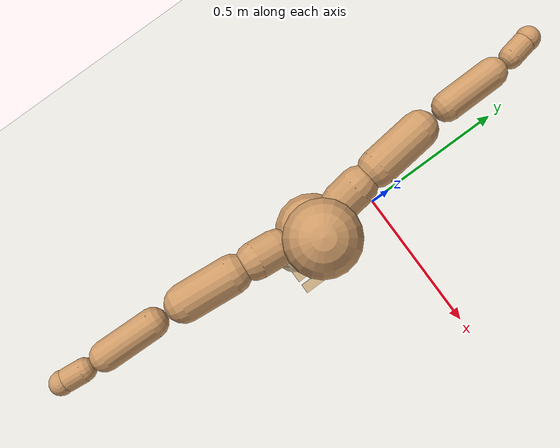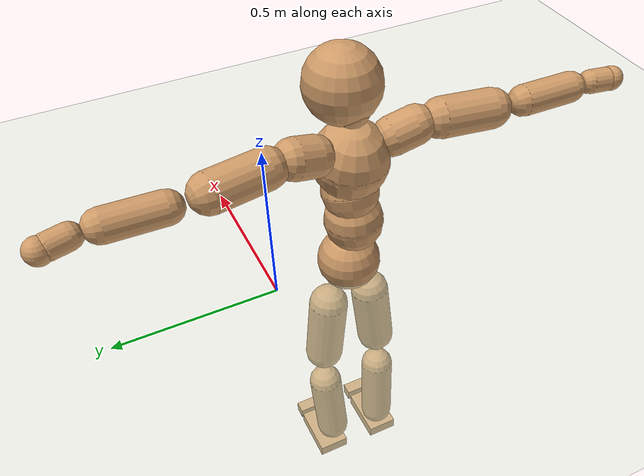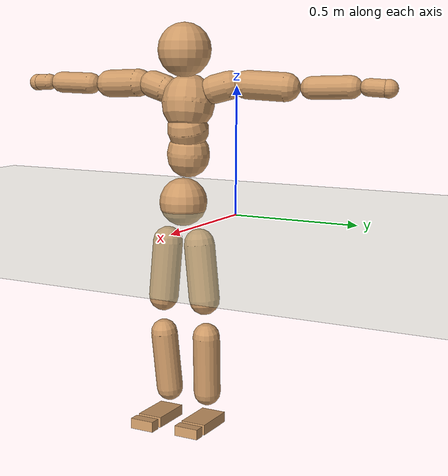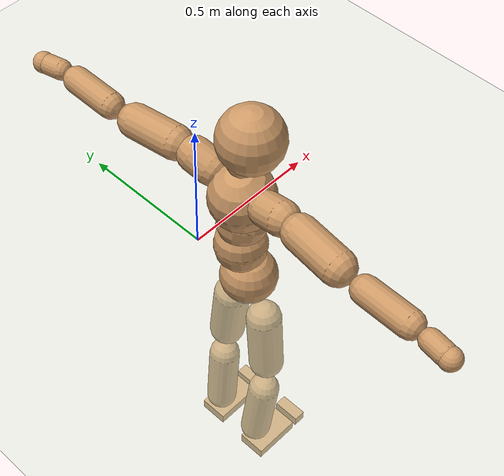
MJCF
<mujoco model="humanoid">
  <compiler coordinate="local"/>
  <default>
    <joint damping="0.0" armature="0.01" stiffness="0.0" limited="true"/>
    <geom conaffinity="1" condim="3" contype="7" margin="0.001" rgba="0.8 0.6 .4 1"/>
  </default>
  <asset>
    <texture type="skybox" builtin="gradient" rgb1=".4 .5 .6" rgb2="0 0 0" width="100" height="100"/>
    <texture builtin="flat" height="1278" mark="cross" markrgb="1 1 1" name="texgeom" random="0.01" rgb1="0.8 0.6 0.4" rgb2="0.8 0.6 0.4" type="cube" width="127"/>
    <texture builtin="checker" height="100" name="texplane" rgb1="0 0 0" rgb2="0.8 0.8 0.8" type="2d" width="100"/>
    <material name="MatPlane" reflectance="0.5" shininess="1" specular="1" texrepeat="60 60" texture="texplane"/>
    <material name="geom" texture="texgeom" texuniform="true"/>
  </asset>
  <worldbody>
    <light cutoff="100" diffuse="1 1 1" dir="-0 0 -1.3" directional="true" exponent="1" pos="0 0 1.3" specular=".1 .1 .1"/>
    <geom conaffinity="1" condim="3" name="floor" pos="0 0 0" rgba="0.8 0.9 0.8 1" size="100 100 .2" type="plane" material="MatPlane"/>
    <body name="Pelvis" pos="-0.0046 -0.2397 0.0348">
      <freejoint name="Pelvis"/>
      <geom type="sphere" contype="1" conaffinity="1" density="4629.6296296296305" size="0.0968" pos="0.0000 0.0000 0.0000" name="Pelvis"/>
      <body name="L_Hip" pos="-0.0004 0.0656 -0.0907">
        <joint name="L_Hip_x" type="hinge" pos="0 0 0" axis="1 0 0" stiffness="800" damping="80" armature="0.02" range="-90.0000 90.0000"/>
        <joint name="L_Hip_y" type="hinge" pos="0 0 0" axis="0 1 0" stiffness="800" damping="80" armature="0.02" range="-90.0000 90.0000"/>
        <joint name="L_Hip_z" type="hinge" pos="0 0 0" axis="0 0 1" stiffness="800" damping="80" armature="0.02" range="-90.0000 90.0000"/>
        <geom type="capsule" contype="1" conaffinity="1" density="2040.816327" fromto="0.0001 0.0078 -0.0755 0.0004 0.0310 -0.3019" size="0.062" name="L_Hip"/>
        <body name="L_Knee" pos="0.0005 0.0388 -0.3774">
          <joint name="L_Knee_x" type="hinge" pos="0 0 0" axis="1 0 0" stiffness="800" damping="80" armature="0.02" range="-5.6250 5.6250"/>
          <joint name="L_Knee_y" type="hinge" pos="0 0 0" axis="0 1 0" stiffness="800" damping="80" armature="0.02" range="0.0000 180.0000"/>
          <joint name="L_Knee_z" type="hinge" pos="0 0 0" axis="0 0 1" stiffness="800" damping="80" armature="0.02" range="-5.6250 5.6250"/>
          <geom type="capsule" contype="1" conaffinity="1" density="1234.567901" fromto="-0.0086 -0.0032 -0.0812 -0.0344 -0.0129 -0.3247" size="0.0553" name="L_Knee"/>
          <body name="L_Ankle" pos="-0.043 -0.0161 -0.4059">
            <joint name="L_Ankle_x" type="hinge" pos="0 0 0" axis="1 0 0" stiffness="800" damping="80" armature="0.02" range="-45.0000 45.0000"/>
            <joint name="L_Ankle_y" type="hinge" pos="0 0 0" axis="0 1 0" stiffness="800" damping="80" armature="0.02" range="-90.0000 90.0000"/>
            <joint name="L_Ankle_z" type="hinge" pos="0 0 0" axis="0 0 1" stiffness="800" damping="80" armature="0.02" range="-45.0000 45.0000"/>
            <geom type="box" contype="1" conaffinity="1" density="1000.000026" pos="0.0619 0.0151 -0.0279" size="0.0878 0.0523 0.0213" quat="1.0000 0.0000 0.0000 0.0000" name="L_Ankle"/>
            <body name="L_Toe" pos="0.1239 0.0302 -0.0557">
              <joint name="L_Toe_x" type="hinge" pos="0 0 0" axis="1 0 0" stiffness="500" damping="50" armature="0.02" range="-180.0000 180.0000"/>
              <joint name="L_Toe_y" type="hinge" pos="0 0 0" axis="0 1 0" stiffness="500" damping="50" armature="0.02" range="-180.0000 180.0000"/>
              <joint name="L_Toe_z" type="hinge" pos="0 0 0" axis="0 0 1" stiffness="500" damping="50" armature="0.02" range="-180.0000 180.0000"/>
              <geom type="box" contype="1" conaffinity="1" density="1016.101624" pos="0.0629 -0.0151 0.0272" size="0.0217 0.051 0.0206" quat="1.0000 0.0000 0.0000 0.0000" name="L_Toe"/>
            </body>
          </body>
        </body>
      </body>
      <body name="R_Hip" pos="0.0007 -0.0653 -0.0895">
        <joint name="R_Hip_x" type="hinge" pos="0 0 0" axis="1 0 0" stiffness="800" damping="80" armature="0.02" range="-90.0000 90.0000"/>
        <joint name="R_Hip_y" type="hinge" pos="0 0 0" axis="0 1 0" stiffness="800" damping="80" armature="0.02" range="-90.0000 90.0000"/>
        <joint name="R_Hip_z" type="hinge" pos="0 0 0" axis="0 0 1" stiffness="800" damping="80" armature="0.02" range="-90.0000 90.0000"/>
        <geom type="capsule" contype="1" conaffinity="1" density="2040.816327" fromto="-0.0013 -0.0079 -0.0775 -0.0053 -0.0317 -0.3099" size="0.0607" name="R_Hip"/>
        <body name="R_Knee" pos="-0.0067 -0.0397 -0.3874">
          <joint name="R_Knee_x" type="hinge" pos="0 0 0" axis="1 0 0" stiffness="800" damping="80" armature="0.02" range="-5.6250 5.6250"/>
          <joint name="R_Knee_y" type="hinge" pos="0 0 0" axis="0 1 0" stiffness="800" damping="80" armature="0.02" range="0.0000 180.0000"/>
          <joint name="R_Knee_z" type="hinge" pos="0 0 0" axis="0 0 1" stiffness="800" damping="80" armature="0.02" range="-5.6250 5.6250"/>
          <geom type="capsule" contype="1" conaffinity="1" density="1234.567901" fromto="-0.0084 0.0035 -0.0814 -0.0337 0.0140 -0.3256" size="0.055" name="R_Knee"/>
          <body name="R_Ankle" pos="-0.0421 0.0175 -0.407">
            <joint name="R_Ankle_x" type="hinge" pos="0 0 0" axis="1 0 0" stiffness="800" damping="80" armature="0.02" range="-45.0000 45.0000"/>
            <joint name="R_Ankle_y" type="hinge" pos="0 0 0" axis="0 1 0" stiffness="800" damping="80" armature="0.02" range="-90.0000 90.0000"/>
            <joint name="R_Ankle_z" type="hinge" pos="0 0 0" axis="0 0 1" stiffness="800" damping="80" armature="0.02" range="-45.0000 45.0000"/>
            <geom type="box" contype="1" conaffinity="1" density="999.999978" pos="0.0638 -0.0155 -0.0246" size="0.0884 0.0515 0.0215" quat="1.0000 0.0000 0.0000 0.0000" name="R_Ankle"/>
            <body name="R_Toe" pos="0.1277 -0.0309 -0.0493">
              <joint name="R_Toe_x" type="hinge" pos="0 0 0" axis="1 0 0" stiffness="500" damping="50" armature="0.02" range="-180.0000 180.0000"/>
              <joint name="R_Toe_y" type="hinge" pos="0 0 0" axis="0 1 0" stiffness="500" damping="50" armature="0.02" range="-180.0000 180.0000"/>
              <joint name="R_Toe_z" type="hinge" pos="0 0 0" axis="0 0 1" stiffness="500" damping="50" armature="0.02" range="-180.0000 180.0000"/>
              <geom type="box" contype="1" conaffinity="1" density="1030.593007" pos="0.0648 0.0155 0.0245" size="0.0221 0.0507 0.0214" quat="1.0000 0.0000 0.0000 0.0000" name="R_Toe"/>
            </body>
          </body>
        </body>
      </body>
      <body name="Torso" pos="-0.0392 -0.0026 0.1159">
        <joint name="Torso_x" type="hinge" pos="0 0 0" axis="1 0 0" stiffness="1000" damping="100" armature="0.02" range="-60.0000 60.0000"/>
        <joint name="Torso_y" type="hinge" pos="0 0 0" axis="0 1 0" stiffness="1000" damping="100" armature="0.02" range="-60.0000 60.0000"/>
        <joint name="Torso_z" type="hinge" pos="0 0 0" axis="0 0 1" stiffness="1000" damping="100" armature="0.02" range="-60.0000 60.0000"/>
        <geom type="capsule" contype="1" conaffinity="1" density="2040.816327" fromto="0.0008 0.0040 0.0647 0.0010 0.0048 0.0791" size="0.0861" name="Torso"/>
        <body name="Spine" pos="0.0018 0.0088 0.1437">
          <joint name="Spine_x" type="hinge" pos="0 0 0" axis="1 0 0" stiffness="1000" damping="100" armature="0.02" range="-60.0000 60.0000"/>
          <joint name="Spine_y" type="hinge" pos="0 0 0" axis="0 1 0" stiffness="1000" damping="100" armature="0.02" range="-60.0000 60.0000"/>
          <joint name="Spine_z" type="hinge" pos="0 0 0" axis="0 0 1" stiffness="1000" damping="100" armature="0.02" range="-60.0000 60.0000"/>
          <geom type="capsule" contype="1" conaffinity="1" density="2040.816327" fromto="0.0092 0.0004 0.0260 0.0112 0.0005 0.0318" size="0.0832" name="Spine"/>
          <body name="Chest" pos="0.0205 0.001 0.0579">
            <joint name="Chest_x" type="hinge" pos="0 0 0" axis="1 0 0" stiffness="1000" damping="100" armature="0.02" range="-60.0000 60.0000"/>
            <joint name="Chest_y" type="hinge" pos="0 0 0" axis="0 1 0" stiffness="1000" damping="100" armature="0.02" range="-60.0000 60.0000"/>
            <joint name="Chest_z" type="hinge" pos="0 0 0" axis="0 0 1" stiffness="1000" damping="100" armature="0.02" range="-60.0000 60.0000"/>
            <geom type="capsule" contype="1" conaffinity="1" density="2040.816327" fromto="-0.0134 -0.0015 0.0698 -0.0164 -0.0019 0.0853" size="0.1065" name="Chest"/>
            <body name="Neck" pos="-0.0306 -0.0052 0.2179">
              <joint name="Neck_x" type="hinge" pos="0 0 0" axis="1 0 0" stiffness="500" damping="50" armature="0.02" range="-5.6250 5.6250"/>
              <joint name="Neck_y" type="hinge" pos="0 0 0" axis="0 1 0" stiffness="500" damping="50" armature="0.02" range="-90.0000 90.0000"/>
              <joint name="Neck_z" type="hinge" pos="0 0 0" axis="0 0 1" stiffness="500" damping="50" armature="0.02" range="-90.0000 90.0000"/>
              <geom type="capsule" contype="1" conaffinity="1" density="1000" fromto="0.0104 0.0016 0.0134 0.0415 0.0063 0.0537" size="0.0483" name="Neck"/>
              <body name="Head" pos="0.0519 0.0078 0.0671">
                <joint name="Head_x" type="hinge" pos="0 0 0" axis="1 0 0" stiffness="500" damping="50" armature="0.02" range="-5.6250 5.6250"/>
                <joint name="Head_y" type="hinge" pos="0 0 0" axis="0 1 0" stiffness="500" damping="50" armature="0.02" range="-90.0000 90.0000"/>
                <joint name="Head_z" type="hinge" pos="0 0 0" axis="0 0 1" stiffness="500" damping="50" armature="0.02" range="-90.0000 90.0000"/>
                <geom type="sphere" contype="1" conaffinity="1" density="1000" size="0.1065" pos="0.0000 0.0000 0.0000" name="Head"/>
              </body>
            </body>
            <body name="L_Thorax" pos="-0.0271 0.0872 0.1257">
              <joint name="L_Thorax_x" type="hinge" pos="0 0 0" axis="1 0 0" stiffness="500" damping="50" armature="0.02" range="-5.6250 5.6250"/>
              <joint name="L_Thorax_y" type="hinge" pos="0 0 0" axis="0 1 0" stiffness="500" damping="50" armature="0.02" range="-5.6250 5.6250"/>
              <joint name="L_Thorax_z" type="hinge" pos="0 0 0" axis="0 0 1" stiffness="500" damping="50" armature="0.02" range="-5.6250 5.6250"/>
              <geom type="capsule" contype="1" conaffinity="1" density="1000" fromto="-0.0027 0.0208 0.0055 -0.0108 0.0834 0.0222" size="0.0571" name="L_Thorax"/>
              <body name="L_Shoulder" pos="-0.0135 0.1042 0.0277">
                <joint name="L_Shoulder_x" type="hinge" pos="0 0 0" axis="1 0 0" stiffness="500" damping="50" armature="0.02" range="-720.0000 720.0000"/>
                <joint name="L_Shoulder_y" type="hinge" pos="0 0 0" axis="0 1 0" stiffness="500" damping="50" armature="0.02" range="-720.0000 720.0000"/>
                <joint name="L_Shoulder_z" type="hinge" pos="0 0 0" axis="0 0 1" stiffness="500" damping="50" armature="0.02" range="-720.0000 720.0000"/>
                <geom type="capsule" contype="1" conaffinity="1" density="1000" fromto="-0.0057 0.0522 -0.0025 -0.0230 0.2088 -0.0100" size="0.0562" name="L_Shoulder"/>
                <body name="L_Elbow" pos="-0.0287 0.261 -0.0126">
                  <joint name="L_Elbow_x" type="hinge" pos="0 0 0" axis="1 0 0" stiffness="500" damping="50" armature="0.02" range="-5.6250 5.6250"/>
                  <joint name="L_Elbow_y" type="hinge" pos="0 0 0" axis="0 1 0" stiffness="500" damping="50" armature="0.02" range="-5.6250 5.6250"/>
                  <joint name="L_Elbow_z" type="hinge" pos="0 0 0" axis="0 0 1" stiffness="500" damping="50" armature="0.02" range="-180.0000 0.0000"/>
                  <geom type="capsule" contype="1" conaffinity="1" density="1000" fromto="-0.0005 0.0518 0.0017 -0.0018 0.2072 0.0070" size="0.0442" name="L_Elbow"/>
                  <body name="L_Wrist" pos="-0.0023 0.259 0.0087">
                    <joint name="L_Wrist_x" type="hinge" pos="0 0 0" axis="1 0 0" stiffness="300" damping="30" armature="0.02" range="-180.0000 180.0000"/>
                    <joint name="L_Wrist_y" type="hinge" pos="0 0 0" axis="0 1 0" stiffness="300" damping="30" armature="0.02" range="-180.0000 180.0000"/>
                    <joint name="L_Wrist_z" type="hinge" pos="0 0 0" axis="0 0 1" stiffness="300" damping="30" armature="0.02" range="-180.0000 180.0000"/>
                    <geom type="capsule" contype="1" conaffinity="1" density="1000" fromto="-0.0035 0.0178 -0.0011 -0.0138 0.0710 -0.0042" size="0.034" name="L_Wrist"/>
                    <body name="L_Hand" pos="-0.0173 0.0888 -0.0053">
                      <joint name="L_Hand_x" type="hinge" pos="0 0 0" axis="1 0 0" stiffness="300" damping="30" armature="0.02" range="-180.0000 180.0000"/>
                      <joint name="L_Hand_y" type="hinge" pos="0 0 0" axis="0 1 0" stiffness="300" damping="30" armature="0.02" range="-180.0000 180.0000"/>
                      <joint name="L_Hand_z" type="hinge" pos="0 0 0" axis="0 0 1" stiffness="300" damping="30" armature="0.02" range="-180.0000 180.0000"/>
                      <geom type="sphere" contype="1" conaffinity="1" density="1000" size="0.0354" pos="0.0000 0.0000 0.0000" name="L_Hand"/>
                    </body>
                  </body>
                </body>
              </body>
            </body>
            <body name="R_Thorax" pos="-0.0315 -0.0923 0.1214">
              <joint name="R_Thorax_x" type="hinge" pos="0 0 0" axis="1 0 0" stiffness="500" damping="50" armature="0.02" range="-5.6250 5.6250"/>
              <joint name="R_Thorax_y" type="hinge" pos="0 0 0" axis="0 1 0" stiffness="500" damping="50" armature="0.02" range="-5.6250 5.6250"/>
              <joint name="R_Thorax_z" type="hinge" pos="0 0 0" axis="0 0 1" stiffness="500" damping="50" armature="0.02" range="-5.6250 5.6250"/>
              <geom type="capsule" contype="1" conaffinity="1" density="1000" fromto="-0.0021 -0.0219 0.0062 -0.0086 -0.0877 0.0247" size="0.0556" name="R_Thorax"/>
              <body name="R_Shoulder" pos="-0.0107 -0.1097 0.0309">
                <joint name="R_Shoulder_x" type="hinge" pos="0 0 0" axis="1 0 0" stiffness="500" damping="50" armature="0.02" range="-720.0000 720.0000"/>
                <joint name="R_Shoulder_y" type="hinge" pos="0 0 0" axis="0 1 0" stiffness="500" damping="50" armature="0.02" range="-720.0000 720.0000"/>
                <joint name="R_Shoulder_z" type="hinge" pos="0 0 0" axis="0 0 1" stiffness="500" damping="50" armature="0.02" range="-720.0000 720.0000"/>
                <geom type="capsule" contype="1" conaffinity="1" density="1000" fromto="-0.0049 -0.0506 -0.0020 -0.0198 -0.2025 -0.0079" size="0.057" name="R_Shoulder"/>
                <body name="R_Elbow" pos="-0.0247 -0.2531 -0.0098">
                  <joint name="R_Elbow_x" type="hinge" pos="0 0 0" axis="1 0 0" stiffness="500" damping="50" armature="0.02" range="-5.6250 5.6250"/>
                  <joint name="R_Elbow_y" type="hinge" pos="0 0 0" axis="0 1 0" stiffness="500" damping="50" armature="0.02" range="-5.6250 5.6250"/>
                  <joint name="R_Elbow_z" type="hinge" pos="0 0 0" axis="0 0 1" stiffness="500" damping="50" armature="0.02" range="0.0000 180.0000"/>
                  <geom type="capsule" contype="1" conaffinity="1" density="1000" fromto="-0.0015 -0.0518 0.0009 -0.0062 -0.2071 0.0036" size="0.0444" name="R_Elbow"/>
                  <body name="R_Wrist" pos="-0.0077 -0.2589 0.0044">
                    <joint name="R_Wrist_x" type="hinge" pos="0 0 0" axis="1 0 0" stiffness="300" damping="30" armature="0.02" range="-180.0000 180.0000"/>
                    <joint name="R_Wrist_y" type="hinge" pos="0 0 0" axis="0 1 0" stiffness="300" damping="30" armature="0.02" range="-180.0000 180.0000"/>
                    <joint name="R_Wrist_z" type="hinge" pos="0 0 0" axis="0 0 1" stiffness="300" damping="30" armature="0.02" range="-180.0000 180.0000"/>
                    <geom type="capsule" contype="1" conaffinity="1" density="1000" fromto="-0.0019 -0.0175 -0.0008 -0.0077 -0.0702 -0.0031" size="0.0343" name="R_Wrist"/>
                    <body name="R_Hand" pos="-0.0096 -0.0877 -0.0039">
                      <joint name="R_Hand_x" type="hinge" pos="0 0 0" axis="1 0 0" stiffness="300" damping="30" armature="0.02" range="-180.0000 180.0000"/>
                      <joint name="R_Hand_y" type="hinge" pos="0 0 0" axis="0 1 0" stiffness="300" damping="30" armature="0.02" range="-180.0000 180.0000"/>
                      <joint name="R_Hand_z" type="hinge" pos="0 0 0" axis="0 0 1" stiffness="300" damping="30" armature="0.02" range="-180.0000 180.0000"/>
                      <geom type="sphere" contype="1" conaffinity="1" density="1000" size="0.0354" pos="0.0000 0.0000 0.0000" name="R_Hand"/>
                    </body>
                  </body>
                </body>
              </body>
            </body>
          </body>
        </body>
      </body>
    </body>
  </worldbody>
  <actuator>
    <motor name="L_Hip_x" joint="L_Hip_x" gear="500"/>
    <motor name="L_Hip_y" joint="L_Hip_y" gear="500"/>
    <motor name="L_Hip_z" joint="L_Hip_z" gear="500"/>
    <motor name="L_Knee_x" joint="L_Knee_x" gear="500"/>
    <motor name="L_Knee_y" joint="L_Knee_y" gear="500"/>
    <motor name="L_Knee_z" joint="L_Knee_z" gear="500"/>
    <motor name="L_Ankle_x" joint="L_Ankle_x" gear="500"/>
    <motor name="L_Ankle_y" joint="L_Ankle_y" gear="500"/>
    <motor name="L_Ankle_z" joint="L_Ankle_z" gear="500"/>
    <motor name="L_Toe_x" joint="L_Toe_x" gear="500"/>
    <motor name="L_Toe_y" joint="L_Toe_y" gear="500"/>
    <motor name="L_Toe_z" joint="L_Toe_z" gear="500"/>
    <motor name="R_Hip_x" joint="R_Hip_x" gear="500"/>
    <motor name="R_Hip_y" joint="R_Hip_y" gear="500"/>
    <motor name="R_Hip_z" joint="R_Hip_z" gear="500"/>
    <motor name="R_Knee_x" joint="R_Knee_x" gear="500"/>
    <motor name="R_Knee_y" joint="R_Knee_y" gear="500"/>
    <motor name="R_Knee_z" joint="R_Knee_z" gear="500"/>
    <motor name="R_Ankle_x" joint="R_Ankle_x" gear="500"/>
    <motor name="R_Ankle_y" joint="R_Ankle_y" gear="500"/>
    <motor name="R_Ankle_z" joint="R_Ankle_z" gear="500"/>
    <motor name="R_Toe_x" joint="R_Toe_x" gear="500"/>
    <motor name="R_Toe_y" joint="R_Toe_y" gear="500"/>
    <motor name="R_Toe_z" joint="R_Toe_z" gear="500"/>
    <motor name="Torso_x" joint="Torso_x" gear="500"/>
    <motor name="Torso_y" joint="Torso_y" gear="500"/>
    <motor name="Torso_z" joint="Torso_z" gear="500"/>
    <motor name="Spine_x" joint="Spine_x" gear="500"/>
    <motor name="Spine_y" joint="Spine_y" gear="500"/>
    <motor name="Spine_z" joint="Spine_z" gear="500"/>
    <motor name="Chest_x" joint="Chest_x" gear="500"/>
    <motor name="Chest_y" joint="Chest_y" gear="500"/>
    <motor name="Chest_z" joint="Chest_z" gear="500"/>
    <motor name="Neck_x" joint="Neck_x" gear="500"/>
    <motor name="Neck_y" joint="Neck_y" gear="500"/>
    <motor name="Neck_z" joint="Neck_z" gear="500"/>
    <motor name="Head_x" joint="Head_x" gear="500"/>
    <motor name="Head_y" joint="Head_y" gear="500"/>
    <motor name="Head_z" joint="Head_z" gear="500"/>
    <motor name="L_Thorax_x" joint="L_Thorax_x" gear="500"/>
    <motor name="L_Thorax_y" joint="L_Thorax_y" gear="500"/>
    <motor name="L_Thorax_z" joint="L_Thorax_z" gear="500"/>
    <motor name="L_Shoulder_x" joint="L_Shoulder_x" gear="500"/>
    <motor name="L_Shoulder_y" joint="L_Shoulder_y" gear="500"/>
    <motor name="L_Shoulder_z" joint="L_Shoulder_z" gear="500"/>
    <motor name="L_Elbow_x" joint="L_Elbow_x" gear="500"/>
    <motor name="L_Elbow_y" joint="L_Elbow_y" gear="500"/>
    <motor name="L_Elbow_z" joint="L_Elbow_z" gear="500"/>
    <motor name="L_Wrist_x" joint="L_Wrist_x" gear="500"/>
    <motor name="L_Wrist_y" joint="L_Wrist_y" gear="500"/>
    <motor name="L_Wrist_z" joint="L_Wrist_z" gear="500"/>
    <motor name="L_Hand_x" joint="L_Hand_x" gear="500"/>
    <motor name="L_Hand_y" joint="L_Hand_y" gear="500"/>
    <motor name="L_Hand_z" joint="L_Hand_z" gear="500"/>
    <motor name="R_Thorax_x" joint="R_Thorax_x" gear="500"/>
    <motor name="R_Thorax_y" joint="R_Thorax_y" gear="500"/>
    <motor name="R_Thorax_z" joint="R_Thorax_z" gear="500"/>
    <motor name="R_Shoulder_x" joint="R_Shoulder_x" gear="500"/>
    <motor name="R_Shoulder_y" joint="R_Shoulder_y" gear="500"/>
    <motor name="R_Shoulder_z" joint="R_Shoulder_z" gear="500"/>
    <motor name="R_Elbow_x" joint="R_Elbow_x" gear="500"/>
    <motor name="R_Elbow_y" joint="R_Elbow_y" gear="500"/>
    <motor name="R_Elbow_z" joint="R_Elbow_z" gear="500"/>
    <motor name="R_Wrist_x" joint="R_Wrist_x" gear="500"/>
    <motor name="R_Wrist_y" joint="R_Wrist_y" gear="500"/>
    <motor name="R_Wrist_z" joint="R_Wrist_z" gear="500"/>
    <motor name="R_Hand_x" joint="R_Hand_x" gear="500"/>
    <motor name="R_Hand_y" joint="R_Hand_y" gear="500"/>
    <motor name="R_Hand_z" joint="R_Hand_z" gear="500"/>
  </actuator>
  <contact>
    <exclude body1="Torso" body2="Chest"/>
    <exclude body1="Head" body2="Chest"/>
    <exclude body1="R_Knee" body2="R_Toe"/>
    <exclude body1="R_Knee" body2="L_Ankle"/>
    <exclude body1="R_Knee" body2="L_Toe"/>
    <exclude body1="L_Knee" body2="L_Toe"/>
    <exclude body1="L_Knee" body2="R_Ankle"/>
    <exclude body1="L_Knee" body2="R_Toe"/>
    <exclude body1="L_Shoulder" body2="Chest"/>
    <exclude body1="R_Shoulder" body2="Chest"/>
  </contact>
  <sensor/>
  <size njmax="700" nconmax="700"/>
</mujoco>
